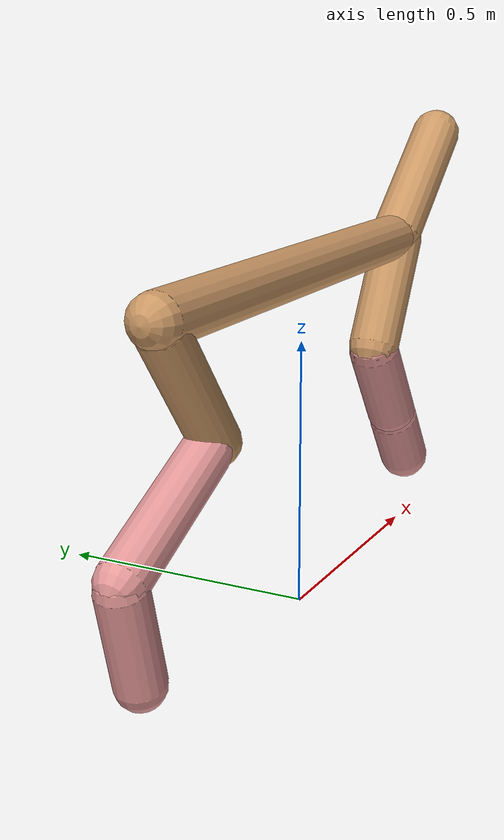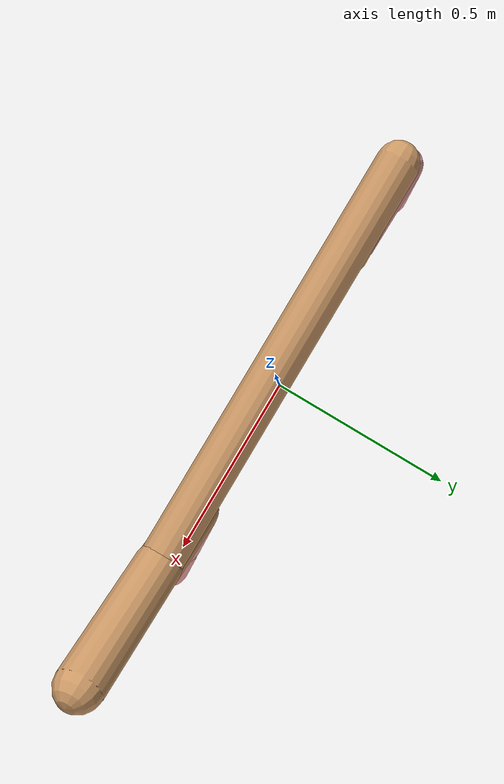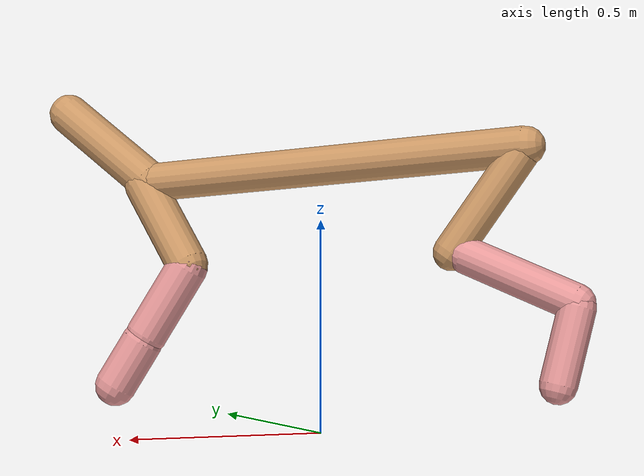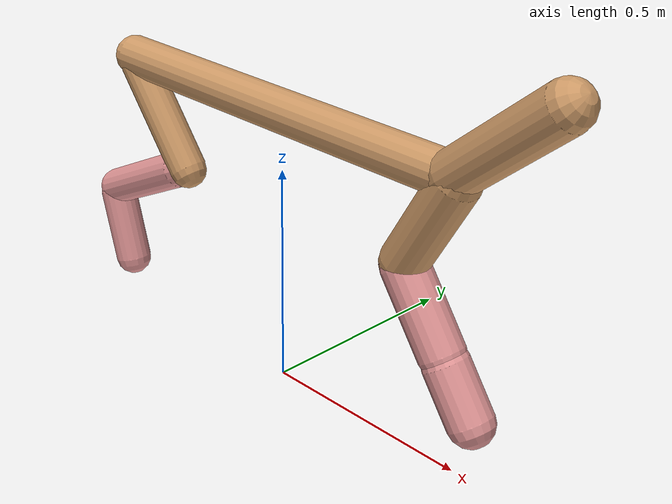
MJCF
<mujoco model="cheetah">
  <compiler angle="radian" coordinate="local" inertiafromgeom="true" settotalmass="14" />
  <default>
    <joint armature=".1" damping=".01" limited="true" solimplimit="0 .8 .03" solreflimit=".02 1" stiffness="8" />
    <geom conaffinity="0" condim="3" contype="1" friction="0.8 .1 .1" rgba="0.8 0.6 .4 1" solimp="0.0 0.8 0.01" solref="0.02 1" />
    <motor ctrllimited="true" ctrlrange="-1 1" />
  </default>
  <size nstack="300000" nuser_geom="1" />
  <option gravity="0 0 -9.81" timestep="0.01" />
  <worldbody>
    <body name="torso" pos="0.0 0.0 0.6316700763377485">
      <joint armature="0" axis="1 0 0" damping="0" limited="false" name="ignorex" pos="0 0 0" stiffness="0" type="slide" />
      <joint armature="0" axis="0 0 1" damping="0" limited="false" name="ignorez" pos="0 0 0" stiffness="0" type="slide" />
      <joint armature="0" axis="0 1 0" damping="0" limited="false" name="ignorey" pos="0 0 0" stiffness="0" type="hinge" />
      <geom fromto="-0.5 0.0 0.0 0.4717379990059987 0.0 0.0" name="torso" size="0.04642841047838783" type="capsule" />
      <geom axisangle="0 1 0 .87" name="head" pos="0.5717379990059986 0.0 0.1" size="0.05055855763733383 0.15" type="capsule" />

      <body name="bthigh" pos="-.5 0 0">
        <joint axis="0 1 0" damping="6" name="bthigh" pos="0 0 0" range="-.52 1.05" stiffness="240" type="hinge" />
        <geom axisangle="0 1 0 -3.8" name="bthigh" pos="0.09488057964998955 0.0 -0.1233447535449864" size="0.04285527079183613 0.1366035263296386" type="capsule" />
        <body name="bshin" pos="0.14976115929997907 0.0 -0.2366895070899728">
          <joint axis="0 1 0" damping="4.5" name="bshin" pos="0 0 0" range="-.785 .785" stiffness="180" type="hinge" />
          <geom axisangle="0 1 0 -2.03" name="bshin" pos="-0.13223099893866957 0.0 -0.06611549946933479" rgba="0.9 0.6 0.6 1" size="0.04285527079183613 0.14131399275479853" type="capsule" />
          <body name="bfoot" pos="-0.26446199787733915 0.0 -0.13223099893866957">
            <joint axis="0 1 0" damping="3" name="bfoot" pos="0 0 0" range="-.4 .785" stiffness="120" type="hinge" />
            <geom axisangle="0 1 0 -.27" name="bfoot" pos="0.028391689983469054 0.0 -0.0917997976132166" rgba="0.9 0.6 0.6 1" size="0.04285527079183613 0.08855676879300708" type="capsule" />
            <inertial mass="10" />
          </body>
        </body>
      </body>
      <body name="fthigh" pos="0.47173799900599866 0.0 0.0">
        <joint axis="0 1 0" damping="4.5" name="fthigh" pos="0 0 0" range="-1.5 0.8" stiffness="180" type="hinge" />
        <geom axisangle="0 1 0 .52" name="fthigh" pos="-0.06337602963341527 0.0 -0.10864462222871187" size="0.05046829075228935 0.11985383752777802" type="capsule" />
        <body name="fshin" pos="-0.12675205926683053 0.0 -0.21728924445742373">
          <joint axis="0 1 0" damping="3" name="fshin" pos="0 0 0" range="-1.2 1.1" stiffness="120" type="hinge" />
          <geom axisangle="0 1 0 -.6" name="fshin" pos="0.05886558557624322 0.0 -0.08150619541325985" rgba="0.9 0.6 0.6 1" size="0.05046829075228935 0.09552260735296593" type="capsule" />
          <body name="ffoot" pos="0.11773117115248644 0.0 -0.1630123908265197">
            <joint axis="0 1 0" damping="1.5" name="ffoot" pos="0 0 0" range="-3.1 -0.3" stiffness="60" type="hinge" />
            <geom axisangle="0 1 0 -.6" name="ffoot" pos="0.04125848044552912 0.0 -0.06417985847082308" rgba="0.9 0.6 0.6 1" size="0.05046829075228935 0.06308096711988317" type="capsule" />
            <inertial mass="10" />
          </body>
        </body>
      </body>
    </body>
  </worldbody>
  <actuator>
    <motor gear="120" joint="bthigh" name="bthigh" />
    <motor gear="90" joint="bshin" name="bshin" />
    <motor gear="60" joint="bfoot" name="bfoot" />
    <motor gear="120" joint="fthigh" name="fthigh" />
    <motor gear="60" joint="fshin" name="fshin" />
    <motor gear="30" joint="ffoot" name="ffoot" />
  </actuator>
</mujoco>
